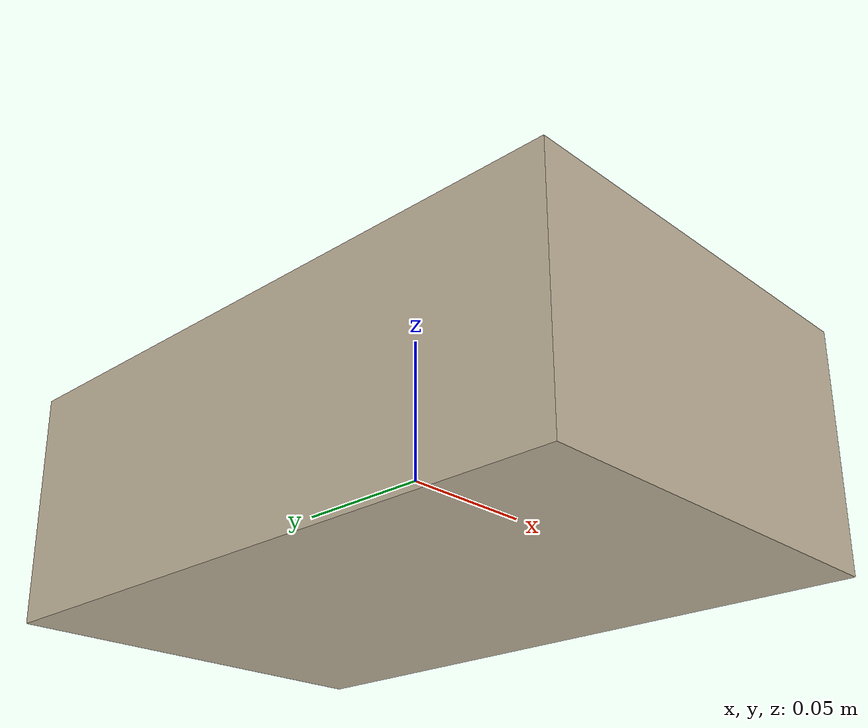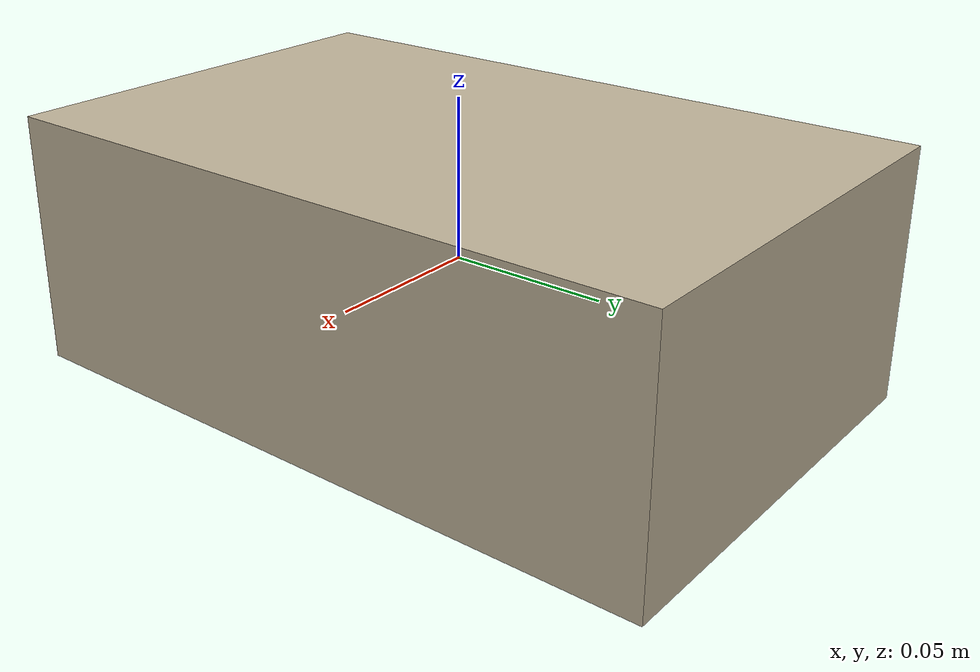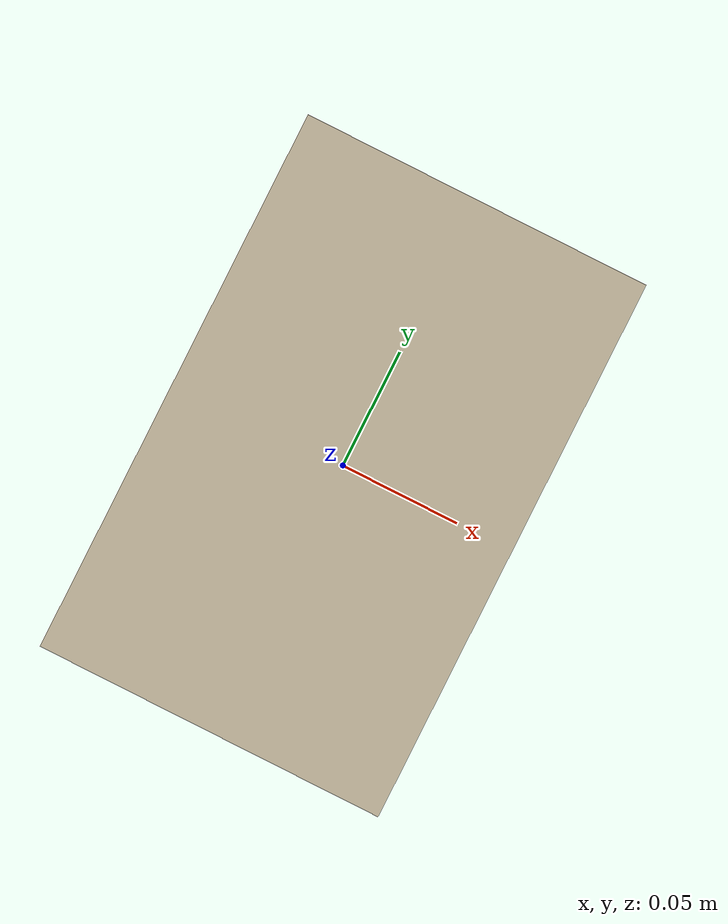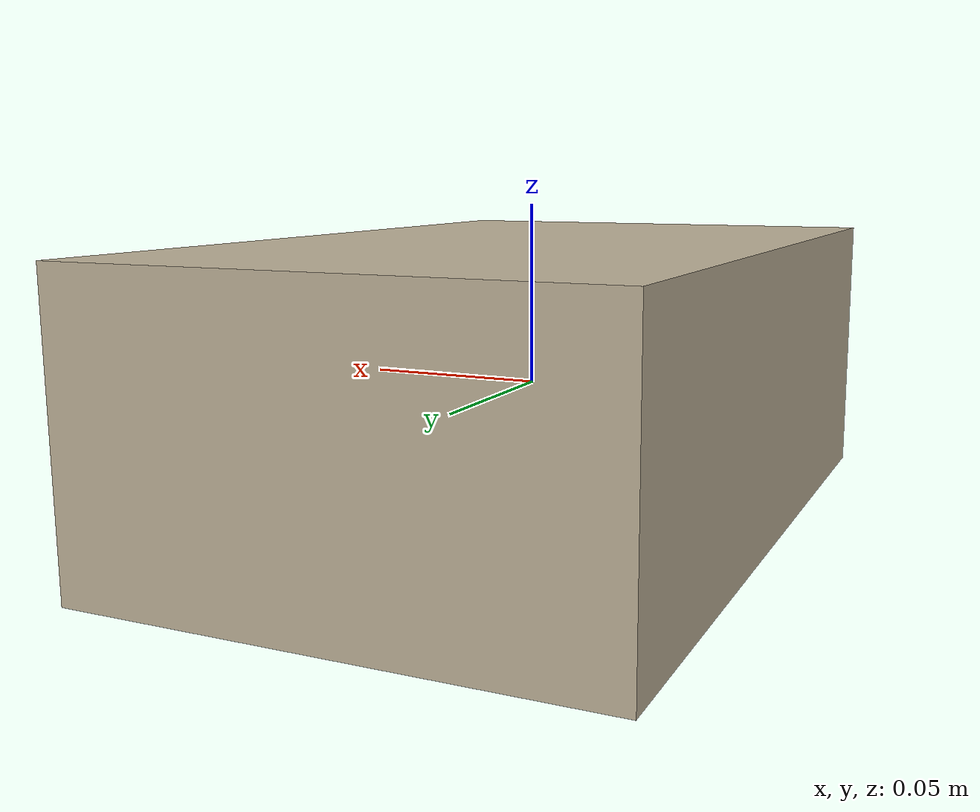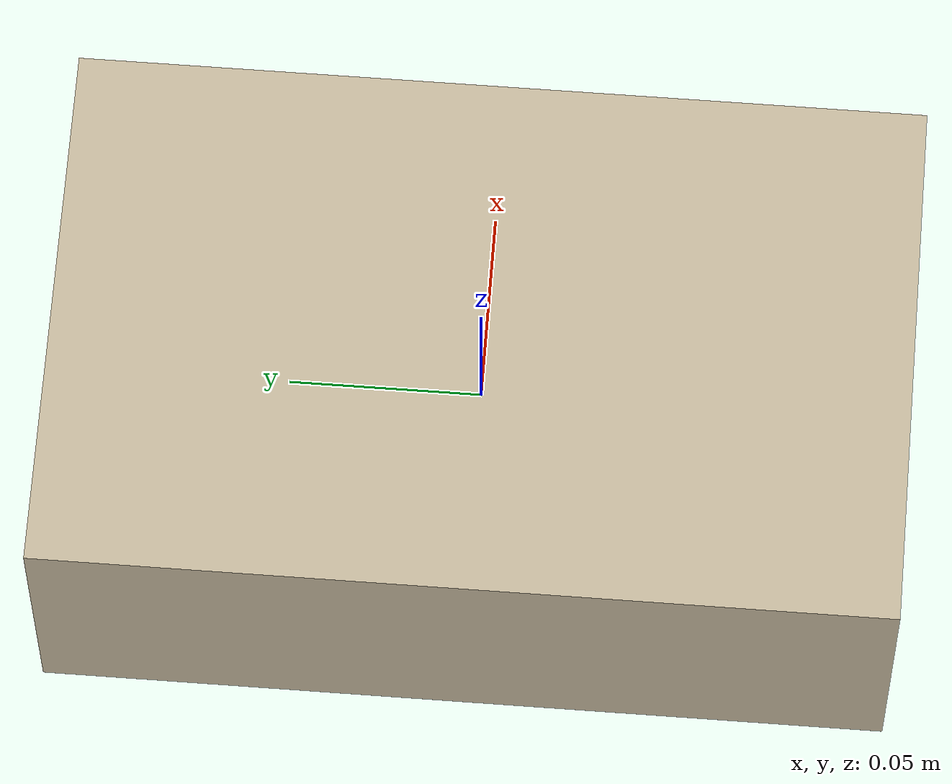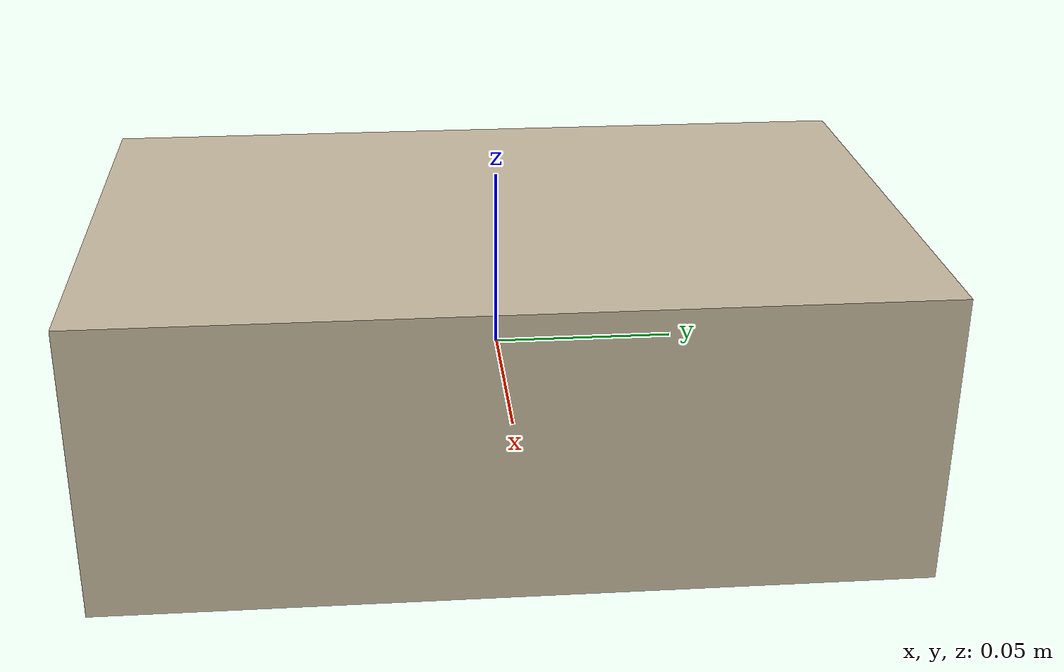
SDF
<?xml version="1.0"?>
<sdf version="1.9">
  <model name="pick_pedestal">
    <static>true</static>
    <link name="link">
      <visual name="visual">
        <geometry><box><size>0.14 0.22 0.08</size></box></geometry>
        <material>
          <ambient>0.75 0.70 0.60 1</ambient>
          <diffuse>0.75 0.70 0.60 1</diffuse>
        </material>
      </visual>
      <collision name="collision">
        <geometry><box><size>0.14 0.22 0.08</size></box></geometry>
      </collision>
    </link>
  </model>
</sdf>
